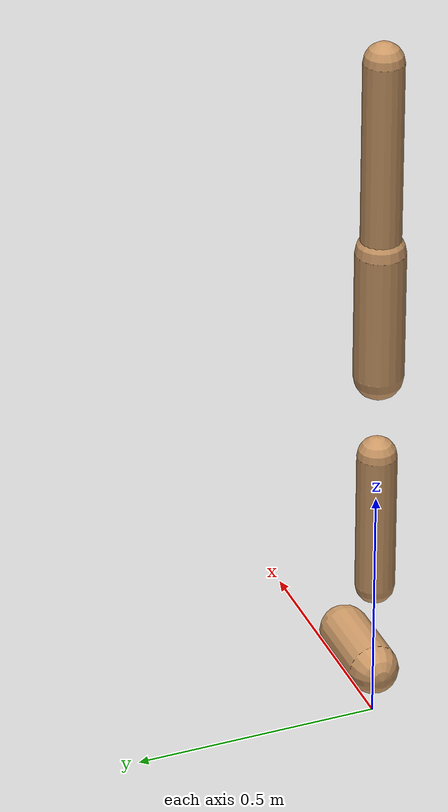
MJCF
<mujoco model="walker2d">
  <compiler angle="degree" coordinate="global" inertiafromgeom="true" />
  <default>
    <joint armature="0.01" damping=".1" limited="true" />
    <geom conaffinity="0" condim="3" contype="1" density="1000" friction="0.8 .1 .1" rgba="0.8 0.6 .4 1" />
  </default>
  <option integrator="RK4" timestep="0.002" />
  <worldbody>

    <body name="torso" pos="0 0 -0.3863535234924155">
      <joint armature="0" axis="1 0 0" damping="0" limited="false" name="ignorex" pos="0 0 0" stiffness="0" type="slide" />
      <joint armature="0" axis="0 0 1" damping="0" limited="false" name="ignorez" pos="0 0 0" ref="1.25" stiffness="0" type="slide" />
      <joint armature="0" axis="0 1 0" damping="0" limited="false" name="ignorey" pos="0 0 0" stiffness="0" type="hinge" />
      <geom fromto="0 0 1.45 0 0 1.05" name="torso_geom" size="0.04003207795605893" type="capsule" />
      <body name="thigh">
        <joint axis="0 -1 0" name="thigh_joint" pos="0 0 1.05" range="-150 0" type="hinge" />
        <geom fromto="0.0 0.0 1.05 0.0 0.0 0.7830095637595652" name="thigh_geom" size="0.0500155979944191" type="capsule" />
        <body name="leg" pos="0.0 0.0 0.18300956375956523">
          <joint axis="0 -1 0" name="leg_joint" pos="0 0 0.6" range="-150 0" type="hinge" />
          <geom fromto="0.0 0.0 0.6 0.0 0.0 0.3033439597328502" name="leg_geom" size="0.040012478395535275" type="capsule" />
          <body name="foot" pos="0.0 0.0 0.20334395973285022">
            <joint axis="0 -1 0" name="foot_joint" pos="0 0 0.1" range="-45 45" type="hinge" />
            <geom fromto="0.0 0.0 0.1 0.14792935715682587 0.0 0.1" name="foot_geom" size="0.051497470314287204" type="capsule" />
          </body>
        </body>
      </body>

      <body name="thigh_left">
        <joint axis="0 -1 0" name="thigh_left_joint" pos="0 0 1.05" range="-150 0" type="hinge" />
        <geom fromto="0.0 0.0 1.05 0.0 0.0 0.7830095637595652" name="thigh_left_geom" rgba=".7 .3 .6 1" size="0.0500155979944191" type="capsule" />
        <body name="leg_left" pos="0.0 0.0 0.18300956375956523">
          <joint axis="0 -1 0" name="leg_left_joint" pos="0 0 0.6" range="-150 0" type="hinge" />
          <geom fromto="0.0 0.0 0.6 0.0 0.0 0.3033439597328502" name="leg_left_geom" rgba=".7 .3 .6 1" size="0.040012478395535275" type="capsule" />
          <body name="foot_left" pos="0.0 0.0 0.20334395973285022">
            <joint axis="0 -1 0" name="foot_left_joint" pos="0 0 0.1" range="-45 45" type="hinge" />
            <geom fromto="0.0 0.0 0.1 0.14792935715682587 0.0 0.1" name="foot_left_geom" rgba=".7 .3 .6 1" size="0.051497470314287204" type="capsule" />
          </body>
        </body>
      </body>
    </body>
  </worldbody>
  <actuator>

    <motor ctrllimited="true" ctrlrange="-1.0 1.0" gear="100" joint="thigh_joint" />
    <motor ctrllimited="true" ctrlrange="-1.0 1.0" gear="100" joint="leg_joint" />
    <motor ctrllimited="true" ctrlrange="-1.0 1.0" gear="100" joint="foot_joint" />
    <motor ctrllimited="true" ctrlrange="-1.0 1.0" gear="100" joint="thigh_left_joint" />
    <motor ctrllimited="true" ctrlrange="-1.0 1.0" gear="100" joint="leg_left_joint" />
    <motor ctrllimited="true" ctrlrange="-1.0 1.0" gear="100" joint="foot_left_joint" />

  </actuator>
</mujoco>
